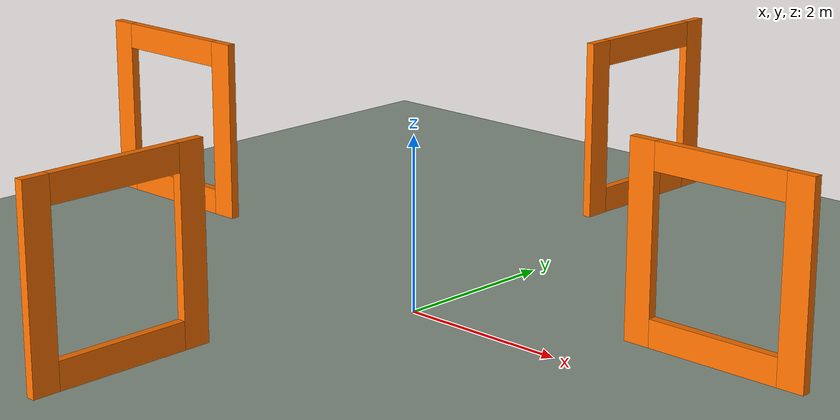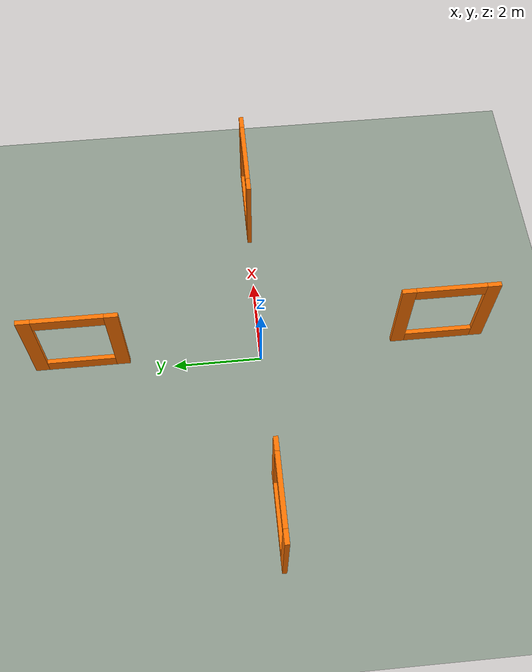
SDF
<sdf version="1.9">
 <world name="adr_cross">
  <plugin filename="gz-sim-physics-system" name="gz::sim::systems::Physics"/>
  <plugin filename="gz-sim-user-commands-system" name="gz::sim::systems::UserCommands"/>
  <plugin filename="gz-sim-scene-broadcaster-system" name="gz::sim::systems::SceneBroadcaster"/>
  <plugin filename="gz-sim-contact-system" name="gz::sim::systems::Contact"/>
  <plugin filename="gz-sim-imu-system" name="gz::sim::systems::Imu"/>
  <plugin filename="gz-sim-air-pressure-system" name="gz::sim::systems::AirPressure"/>
  <plugin filename="gz-sim-magnetometer-system" name="gz::sim::systems::Magnetometer"/>
  <plugin filename="gz-sim-navsat-system" name="gz::sim::systems::NavSat"/>
  <plugin filename="gz-sim-sensors-system" name="gz::sim::systems::Sensors">
   <render_engine>ogre2</render_engine>
  </plugin>
  <physics type="ode">
   <max_step_size>0.004</max_step_size>
   <real_time_factor>1.0</real_time_factor>
   <real_time_update_rate>250</real_time_update_rate>
  </physics>
  <gravity>0 0 -9.8</gravity>
  <magnetic_field>6e-06 2.3e-05 -4.2e-05</magnetic_field>
  <atmosphere type="adiabatic"/>
  <scene>
   <grid>false</grid>
   <ambient>0.4 0.4 0.4 1</ambient>
   <background>0.7 0.7 0.7 1</background>
   <shadows>true</shadows>
  </scene>
  <spherical_coordinates>
   <surface_model>EARTH_WGS84</surface_model>
   <world_frame_orientation>ENU</world_frame_orientation>
   <latitude_deg>47.397971057728974</latitude_deg>
   <longitude_deg>8.546163739800146</longitude_deg>
   <elevation>488</elevation>
  </spherical_coordinates>
  <light name="sun" type="directional">
   <pose>0 0 500 0 0 0</pose>
   <intensity>1</intensity>
   <direction>0.001 0.625 -0.78</direction>
   <diffuse>0.904 0.904 0.904 1</diffuse>
   <specular>0.271 0.271 0.271 1</specular>
   <attenuation><range>2000</range><linear>0</linear><constant>1</constant><quadratic>0</quadratic></attenuation>
  </light>
  <model name="ground_plane">
   <static>true</static>
   <link name="link">
    <collision name="collision">
     <geometry><plane><normal>0 0 1</normal><size>1 1</size></plane></geometry>
    </collision>
    <visual name="visual">
     <geometry><plane><normal>0 0 1</normal><size>200 200</size></plane></geometry>
     <material>
      <ambient>0.55 0.6 0.55 1</ambient>
      <diffuse>0.55 0.6 0.55 1</diffuse>
      <specular>0.2 0.2 0.2 1</specular>
     </material>
    </visual>
   </link>
  </model>
  <include><uri>model://adr_gate</uri><name>gate_1</name><pose>4.0 0.0 1.5 0 0 1.570796</pose></include>
  <include><uri>model://adr_gate</uri><name>gate_2</name><pose>0.0 4.0 1.5 0 0 3.141593</pose></include>
  <include><uri>model://adr_gate</uri><name>gate_3</name><pose>-4.0 0.0 1.5 0 0 4.712389</pose></include>
  <include><uri>model://adr_gate</uri><name>gate_4</name><pose>0.0 -4.0 1.5 0 0 0.000000</pose></include>
 </world>
</sdf>

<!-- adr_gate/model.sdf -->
<!-- 정사각 레이싱 게이트. 내부 1.5 m, 외부 2.1 m (프레임 폭 0.30 m), 두께 0.1 m.
     원점 = 개구부 중심, +x = 통과 방향(법선). static 이라 공중에 고정된다(다리 없음).
     치수는 adr_bringup/config/gates.yaml 의 gate: 항목과 일치해야 한다. -->
<sdf version="1.9">
  <model name="adr_gate">
    <static>true</static>
    <link name="left">
      <pose>0 0.9 0 0 0 0</pose>
      <visual name="left_visual">
        <geometry><box><size>0.1 0.30000000000000004 2.1</size></box></geometry>
        <material>
          <ambient>1.0 0.45 0.0 1</ambient>
          <diffuse>1.0 0.45 0.0 1</diffuse>
          <specular>0.2 0.2 0.2 1</specular>
        </material>
      </visual>
      <collision name="left_collision">
        <geometry><box><size>0.1 0.30000000000000004 2.1</size></box></geometry>
      </collision>
    </link>
    <link name="right">
      <pose>0 -0.9 0 0 0 0</pose>
      <visual name="right_visual">
        <geometry><box><size>0.1 0.30000000000000004 2.1</size></box></geometry>
        <material>
          <ambient>1.0 0.45 0.0 1</ambient>
          <diffuse>1.0 0.45 0.0 1</diffuse>
          <specular>0.2 0.2 0.2 1</specular>
        </material>
      </visual>
      <collision name="right_collision">
        <geometry><box><size>0.1 0.30000000000000004 2.1</size></box></geometry>
      </collision>
    </link>
    <link name="top">
      <pose>0 0 0.9 0 0 0</pose>
      <visual name="top_visual">
        <geometry><box><size>0.1 1.5 0.30000000000000004</size></box></geometry>
        <material>
          <ambient>1.0 0.45 0.0 1</ambient>
          <diffuse>1.0 0.45 0.0 1</diffuse>
          <specular>0.2 0.2 0.2 1</specular>
        </material>
      </visual>
      <collision name="top_collision">
        <geometry><box><size>0.1 1.5 0.30000000000000004</size></box></geometry>
      </collision>
    </link>
    <link name="bottom">
      <pose>0 0 -0.9 0 0 0</pose>
      <visual name="bottom_visual">
        <geometry><box><size>0.1 1.5 0.30000000000000004</size></box></geometry>
        <material>
          <ambient>1.0 0.45 0.0 1</ambient>
          <diffuse>1.0 0.45 0.0 1</diffuse>
          <specular>0.2 0.2 0.2 1</specular>
        </material>
      </visual>
      <collision name="bottom_collision">
        <geometry><box><size>0.1 1.5 0.30000000000000004</size></box></geometry>
      </collision>
    </link>
  </model>
</sdf>
